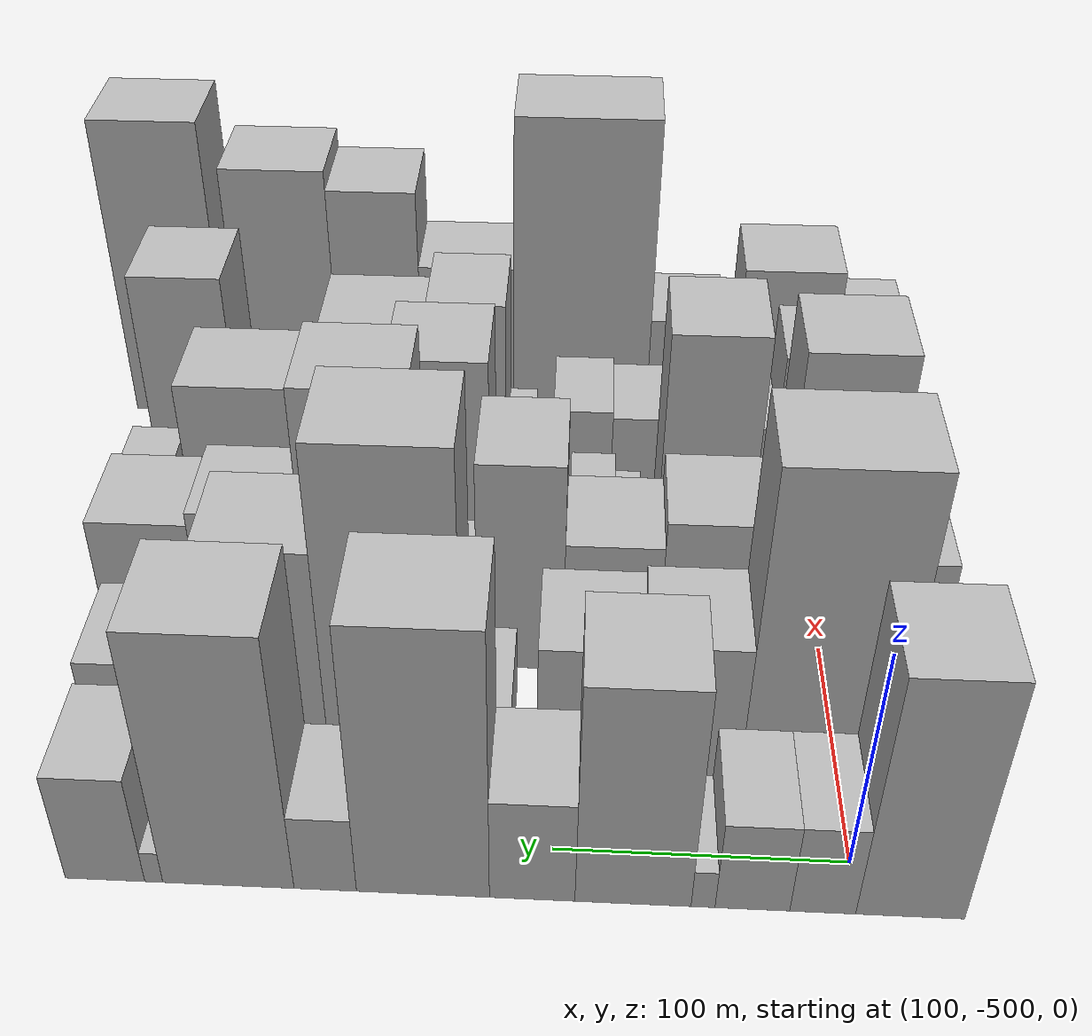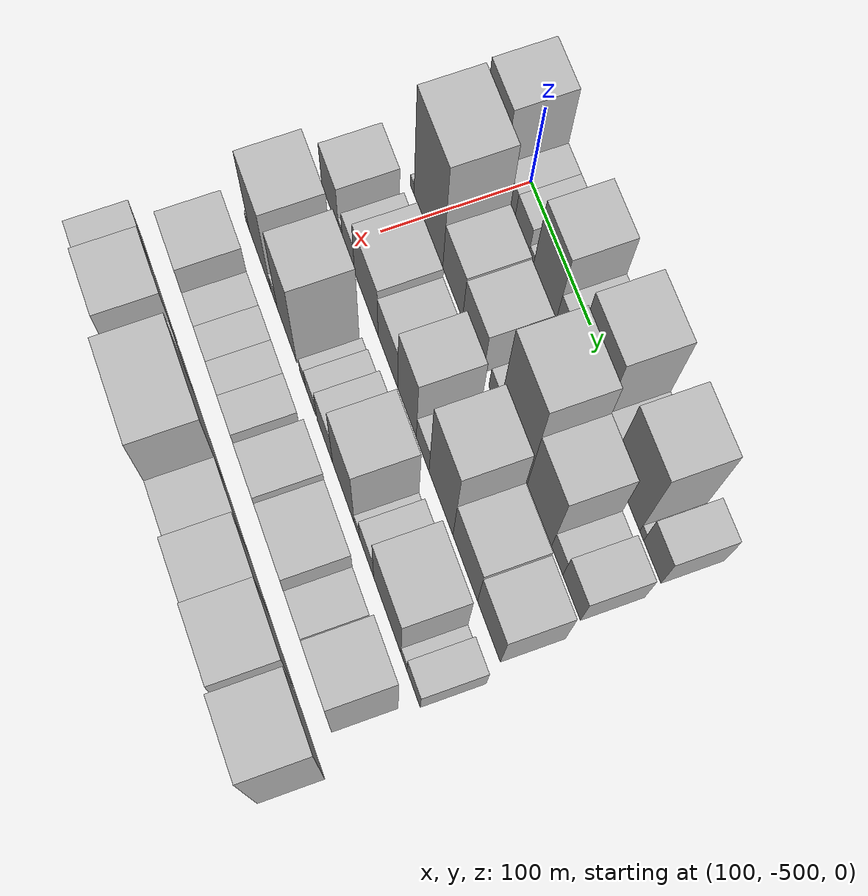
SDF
<sdf version="1.6">
 <world name="default">
  <model name="building_12">
   <static>1</static>
   <pose>100.0000 -517.1414 0 0.000000 0.000000 0.000000</pose>
   <link name="link">
    <pose>0 0 55.50 0 0 0</pose>
    <collision name="collision"><geometry><box><size>40.0000 35.2499 111.0000</size></box></geometry></collision>
    <visual name="visual">
     <cast_shadows>0</cast_shadows>
     <geometry><box><size>40.0000 35.2499 111.0000</size></box></geometry>
     <material>
      <script>
       <uri>model://HANNAS_wall/materials/scripts</uri>
       <uri>model://HANNAS_wall/materials/textures</uri>
       <name>vrc/HANNAS_wall</name>
      </script>
     </material>
    </visual>
   </link>
  </model>
  <model name="building_13">
   <static>1</static>
   <pose>100.0000 -488.8202 0 0.000000 0.000000 0.000000</pose>
   <link name="link">
    <pose>0 0 21.00 0 0 0</pose>
    <collision name="collision"><geometry><box><size>40.0000 21.3925 42.0000</size></box></geometry></collision>
    <visual name="visual">
     <cast_shadows>0</cast_shadows>
     <geometry><box><size>40.0000 21.3925 42.0000</size></box></geometry>
     <material>
      <script>
       <uri>model://HANNAS_wall/materials/scripts</uri>
       <uri>model://HANNAS_wall/materials/textures</uri>
       <name>vrc/HANNAS_wall</name>
      </script>
     </material>
    </visual>
   </link>
  </model>
  <model name="building_14">
   <static>1</static>
   <pose>100.0000 -465.9381 0 0.000000 0.000000 0.000000</pose>
   <link name="link">
    <pose>0 0 21.00 0 0 0</pose>
    <collision name="collision"><geometry><box><size>40.0000 24.3716 42.0000</size></box></geometry></collision>
    <visual name="visual">
     <cast_shadows>0</cast_shadows>
     <geometry><box><size>40.0000 24.3716 42.0000</size></box></geometry>
     <material>
      <script>
       <uri>model://HANNAS_wall/materials/scripts</uri>
       <uri>model://HANNAS_wall/materials/textures</uri>
       <name>vrc/HANNAS_wall</name>
      </script>
     </material>
    </visual>
   </link>
  </model>
  <model name="building_15">
   <static>1</static>
   <pose>100.0000 -449.8477 0 0.000000 0.000000 0.000000</pose>
   <link name="link">
    <pose>0 0 9.00 0 0 0</pose>
    <collision name="collision"><geometry><box><size>40.0000 7.8091 18.0000</size></box></geometry></collision>
    <visual name="visual">
     <cast_shadows>0</cast_shadows>
     <geometry><box><size>40.0000 7.8091 18.0000</size></box></geometry>
     <material>
      <script>
       <uri>model://HANNAS_wall/materials/scripts</uri>
       <uri>model://HANNAS_wall/materials/textures</uri>
       <name>vrc/HANNAS_wall</name>
      </script>
     </material>
    </visual>
   </link>
  </model>
  <model name="building_16">
   <static>1</static>
   <pose>100.0000 -426.8884 0 0.000000 0.000000 0.000000</pose>
   <link name="link">
    <pose>0 0 51.00 0 0 0</pose>
    <collision name="collision"><geometry><box><size>40.0000 38.1096 102.0000</size></box></geometry></collision>
    <visual name="visual">
     <cast_shadows>0</cast_shadows>
     <geometry><box><size>40.0000 38.1096 102.0000</size></box></geometry>
     <material>
      <script>
       <uri>model://HANNAS_wall/materials/scripts</uri>
       <uri>model://HANNAS_wall/materials/textures</uri>
       <name>vrc/HANNAS_wall</name>
      </script>
     </material>
    </visual>
   </link>
  </model>
  <model name="building_17">
   <static>1</static>
   <pose>100.0000 -393.7586 0 0.000000 0.000000 0.000000</pose>
   <link name="link">
    <pose>0 0 24.00 0 0 0</pose>
    <collision name="collision"><geometry><box><size>40.0000 28.1500 48.0000</size></box></geometry></collision>
    <visual name="visual">
     <cast_shadows>0</cast_shadows>
     <geometry><box><size>40.0000 28.1500 48.0000</size></box></geometry>
     <material>
      <script>
       <uri>model://HANNAS_wall/materials/scripts</uri>
       <uri>model://HANNAS_wall/materials/textures</uri>
       <name>vrc/HANNAS_wall</name>
      </script>
     </material>
    </visual>
   </link>
  </model>
  <model name="building_18">
   <static>1</static>
   <pose>100.0000 -357.6440 0 0.000000 0.000000 0.000000</pose>
   <link name="link">
    <pose>0 0 61.50 0 0 0</pose>
    <collision name="collision"><geometry><box><size>40.0000 44.0793 123.0000</size></box></geometry></collision>
    <visual name="visual">
     <cast_shadows>0</cast_shadows>
     <geometry><box><size>40.0000 44.0793 123.0000</size></box></geometry>
     <material>
      <script>
       <uri>model://HANNAS_wall/materials/scripts</uri>
       <uri>model://HANNAS_wall/materials/textures</uri>
       <name>vrc/HANNAS_wall</name>
      </script>
     </material>
    </visual>
   </link>
  </model>
  <model name="building_19">
   <static>1</static>
   <pose>100.0000 -325.1831 0 0.000000 0.000000 0.000000</pose>
   <link name="link">
    <pose>0 0 18.00 0 0 0</pose>
    <collision name="collision"><geometry><box><size>40.0000 20.8425 36.0000</size></box></geometry></collision>
    <visual name="visual">
     <cast_shadows>0</cast_shadows>
     <geometry><box><size>40.0000 20.8425 36.0000</size></box></geometry>
     <material>
      <script>
       <uri>model://HANNAS_wall/materials/scripts</uri>
       <uri>model://HANNAS_wall/materials/textures</uri>
       <name>vrc/HANNAS_wall</name>
      </script>
     </material>
    </visual>
   </link>
  </model>
  <model name="building_20">
   <static>1</static>
   <pose>100.0000 -292.7769 0 0.000000 0.000000 0.000000</pose>
   <link name="link">
    <pose>0 0 58.50 0 0 0</pose>
    <collision name="collision"><geometry><box><size>40.0000 43.9699 117.0000</size></box></geometry></collision>
    <visual name="visual">
     <cast_shadows>0</cast_shadows>
     <geometry><box><size>40.0000 43.9699 117.0000</size></box></geometry>
     <material>
      <script>
       <uri>model://HANNAS_wall/materials/scripts</uri>
       <uri>model://HANNAS_wall/materials/textures</uri>
       <name>vrc/HANNAS_wall</name>
      </script>
     </material>
    </visual>
   </link>
  </model>
  <model name="building_21">
   <static>1</static>
   <pose>100.0000 -267.7532 0 0.000000 0.000000 0.000000</pose>
   <link name="link">
    <pose>0 0 7.50 0 0 0</pose>
    <collision name="collision"><geometry><box><size>40.0000 6.0774 15.0000</size></box></geometry></collision>
    <visual name="visual">
     <cast_shadows>0</cast_shadows>
     <geometry><box><size>40.0000 6.0774 15.0000</size></box></geometry>
     <material>
      <script>
       <uri>model://HANNAS_wall/materials/scripts</uri>
       <uri>model://HANNAS_wall/materials/textures</uri>
       <name>vrc/HANNAS_wall</name>
      </script>
     </material>
    </visual>
   </link>
  </model>
  <model name="building_22">
   <static>1</static>
   <pose>100.0000 -251.3077 0 0.000000 0.000000 0.000000</pose>
   <link name="link">
    <pose>0 0 25.50 0 0 0</pose>
    <collision name="collision"><geometry><box><size>40.0000 26.8137 51.0000</size></box></geometry></collision>
    <visual name="visual">
     <cast_shadows>0</cast_shadows>
     <geometry><box><size>40.0000 26.8137 51.0000</size></box></geometry>
     <material>
      <script>
       <uri>model://HANNAS_wall/materials/scripts</uri>
       <uri>model://HANNAS_wall/materials/textures</uri>
       <name>vrc/HANNAS_wall</name>
      </script>
     </material>
    </visual>
   </link>
  </model>
  <model name="building_64">
   <static>1</static>
   <pose>152.0000 -520.0817 0 0.000000 0.000000 0.000000</pose>
   <link name="link">
    <pose>0 0 7.50 0 0 0</pose>
    <collision name="collision"><geometry><box><size>40.0000 6.9678 15.0000</size></box></geometry></collision>
    <visual name="visual">
     <cast_shadows>0</cast_shadows>
     <geometry><box><size>40.0000 6.9678 15.0000</size></box></geometry>
     <material>
      <script>
       <uri>model://HANNAS_wall/materials/scripts</uri>
       <uri>model://HANNAS_wall/materials/textures</uri>
       <name>vrc/HANNAS_wall</name>
      </script>
     </material>
    </visual>
   </link>
  </model>
  <model name="building_65">
   <static>1</static>
   <pose>152.0000 -490.6315 0 0.000000 0.000000 0.000000</pose>
   <link name="link">
    <pose>0 0 72.00 0 0 0</pose>
    <collision name="collision"><geometry><box><size>40.0000 51.9326 144.0000</size></box></geometry></collision>
    <visual name="visual">
     <cast_shadows>0</cast_shadows>
     <geometry><box><size>40.0000 51.9326 144.0000</size></box></geometry>
     <material>
      <script>
       <uri>model://HANNAS_wall/materials/scripts</uri>
       <uri>model://HANNAS_wall/materials/textures</uri>
       <name>vrc/HANNAS_wall</name>
      </script>
     </material>
    </visual>
   </link>
  </model>
  <model name="building_66">
   <static>1</static>
   <pose>152.0000 -447.1830 0 0.000000 0.000000 0.000000</pose>
   <link name="link">
    <pose>0 0 33.00 0 0 0</pose>
    <collision name="collision"><geometry><box><size>40.0000 34.9644 66.0000</size></box></geometry></collision>
    <visual name="visual">
     <cast_shadows>0</cast_shadows>
     <geometry><box><size>40.0000 34.9644 66.0000</size></box></geometry>
     <material>
      <script>
       <uri>model://HANNAS_wall/materials/scripts</uri>
       <uri>model://HANNAS_wall/materials/textures</uri>
       <name>vrc/HANNAS_wall</name>
      </script>
     </material>
    </visual>
   </link>
  </model>
  <model name="building_67">
   <static>1</static>
   <pose>152.0000 -411.3741 0 0.000000 0.000000 0.000000</pose>
   <link name="link">
    <pose>0 0 31.50 0 0 0</pose>
    <collision name="collision"><geometry><box><size>40.0000 36.6535 63.0000</size></box></geometry></collision>
    <visual name="visual">
     <cast_shadows>0</cast_shadows>
     <geometry><box><size>40.0000 36.6535 63.0000</size></box></geometry>
     <material>
      <script>
       <uri>model://HANNAS_wall/materials/scripts</uri>
       <uri>model://HANNAS_wall/materials/textures</uri>
       <name>vrc/HANNAS_wall</name>
      </script>
     </material>
    </visual>
   </link>
  </model>
  <model name="building_68">
   <static>1</static>
   <pose>152.0000 -375.5326 0 0.000000 0.000000 0.000000</pose>
   <link name="link">
    <pose>0 0 16.50 0 0 0</pose>
    <collision name="collision"><geometry><box><size>40.0000 17.0295 33.0000</size></box></geometry></collision>
    <visual name="visual">
     <cast_shadows>0</cast_shadows>
     <geometry><box><size>40.0000 17.0295 33.0000</size></box></geometry>
     <material>
      <script>
       <uri>model://HANNAS_wall/materials/scripts</uri>
       <uri>model://HANNAS_wall/materials/textures</uri>
       <name>vrc/HANNAS_wall</name>
      </script>
     </material>
    </visual>
   </link>
  </model>
  <model name="building_69">
   <static>1</static>
   <pose>152.0000 -343.1738 0 0.000000 0.000000 0.000000</pose>
   <link name="link">
    <pose>0 0 73.50 0 0 0</pose>
    <collision name="collision"><geometry><box><size>40.0000 47.6880 147.0000</size></box></geometry></collision>
    <visual name="visual">
     <cast_shadows>0</cast_shadows>
     <geometry><box><size>40.0000 47.6880 147.0000</size></box></geometry>
     <material>
      <script>
       <uri>model://HANNAS_wall/materials/scripts</uri>
       <uri>model://HANNAS_wall/materials/textures</uri>
       <name>vrc/HANNAS_wall</name>
      </script>
     </material>
    </visual>
   </link>
  </model>
  <model name="building_70">
   <static>1</static>
   <pose>152.0000 -299.5063 0 0.000000 0.000000 0.000000</pose>
   <link name="link">
    <pose>0 0 51.00 0 0 0</pose>
    <collision name="collision"><geometry><box><size>40.0000 39.6471 102.0000</size></box></geometry></collision>
    <visual name="visual">
     <cast_shadows>0</cast_shadows>
     <geometry><box><size>40.0000 39.6471 102.0000</size></box></geometry>
     <material>
      <script>
       <uri>model://HANNAS_wall/materials/scripts</uri>
       <uri>model://HANNAS_wall/materials/textures</uri>
       <name>vrc/HANNAS_wall</name>
      </script>
     </material>
    </visual>
   </link>
  </model>
  <model name="building_71">
   <static>1</static>
   <pose>152.0000 -270.5392 0 0.000000 0.000000 0.000000</pose>
   <link name="link">
    <pose>0 0 16.50 0 0 0</pose>
    <collision name="collision"><geometry><box><size>40.0000 18.2869 33.0000</size></box></geometry></collision>
    <visual name="visual">
     <cast_shadows>0</cast_shadows>
     <geometry><box><size>40.0000 18.2869 33.0000</size></box></geometry>
     <material>
      <script>
       <uri>model://HANNAS_wall/materials/scripts</uri>
       <uri>model://HANNAS_wall/materials/textures</uri>
       <name>vrc/HANNAS_wall</name>
      </script>
     </material>
    </visual>
   </link>
  </model>
  <model name="building_72">
   <static>1</static>
   <pose>152.0000 -247.4045 0 0.000000 0.000000 0.000000</pose>
   <link name="link">
    <pose>0 0 24.00 0 0 0</pose>
    <collision name="collision"><geometry><box><size>40.0000 27.9825 48.0000</size></box></geometry></collision>
    <visual name="visual">
     <cast_shadows>0</cast_shadows>
     <geometry><box><size>40.0000 27.9825 48.0000</size></box></geometry>
     <material>
      <script>
       <uri>model://HANNAS_wall/materials/scripts</uri>
       <uri>model://HANNAS_wall/materials/textures</uri>
       <name>vrc/HANNAS_wall</name>
      </script>
     </material>
    </visual>
   </link>
  </model>
  <model name="building_116">
   <static>1</static>
   <pose>204.0000 -525.6749 0 0.000000 0.000000 0.000000</pose>
   <link name="link">
    <pose>0 0 30.00 0 0 0</pose>
    <collision name="collision"><geometry><box><size>40.0000 31.6657 60.0000</size></box></geometry></collision>
    <visual name="visual">
     <cast_shadows>0</cast_shadows>
     <geometry><box><size>40.0000 31.6657 60.0000</size></box></geometry>
     <material>
      <script>
       <uri>model://HANNAS_wall/materials/scripts</uri>
       <uri>model://HANNAS_wall/materials/textures</uri>
       <name>vrc/HANNAS_wall</name>
      </script>
     </material>
    </visual>
   </link>
  </model>
  <model name="building_117">
   <static>1</static>
   <pose>204.0000 -506.1091 0 0.000000 0.000000 0.000000</pose>
   <link name="link">
    <pose>0 0 9.00 0 0 0</pose>
    <collision name="collision"><geometry><box><size>40.0000 7.4657 18.0000</size></box></geometry></collision>
    <visual name="visual">
     <cast_shadows>0</cast_shadows>
     <geometry><box><size>40.0000 7.4657 18.0000</size></box></geometry>
     <material>
      <script>
       <uri>model://HANNAS_wall/materials/scripts</uri>
       <uri>model://HANNAS_wall/materials/textures</uri>
       <name>vrc/HANNAS_wall</name>
      </script>
     </material>
    </visual>
   </link>
  </model>
  <model name="building_118">
   <static>1</static>
   <pose>204.0000 -491.2236 0 0.000000 0.000000 0.000000</pose>
   <link name="link">
    <pose>0 0 21.00 0 0 0</pose>
    <collision name="collision"><geometry><box><size>40.0000 22.3054 42.0000</size></box></geometry></collision>
    <visual name="visual">
     <cast_shadows>0</cast_shadows>
     <geometry><box><size>40.0000 22.3054 42.0000</size></box></geometry>
     <material>
      <script>
       <uri>model://HANNAS_wall/materials/scripts</uri>
       <uri>model://HANNAS_wall/materials/textures</uri>
       <name>vrc/HANNAS_wall</name>
      </script>
     </material>
    </visual>
   </link>
  </model>
  <model name="building_119">
   <static>1</static>
   <pose>204.0000 -458.3311 0 0.000000 0.000000 0.000000</pose>
   <link name="link">
    <pose>0 0 37.50 0 0 0</pose>
    <collision name="collision"><geometry><box><size>40.0000 43.4796 75.0000</size></box></geometry></collision>
    <visual name="visual">
     <cast_shadows>0</cast_shadows>
     <geometry><box><size>40.0000 43.4796 75.0000</size></box></geometry>
     <material>
      <script>
       <uri>model://HANNAS_wall/materials/scripts</uri>
       <uri>model://HANNAS_wall/materials/textures</uri>
       <name>vrc/HANNAS_wall</name>
      </script>
     </material>
    </visual>
   </link>
  </model>
  <model name="building_120">
   <static>1</static>
   <pose>204.0000 -418.6936 0 0.000000 0.000000 0.000000</pose>
   <link name="link">
    <pose>0 0 31.50 0 0 0</pose>
    <collision name="collision"><geometry><box><size>40.0000 35.7954 63.0000</size></box></geometry></collision>
    <visual name="visual">
     <cast_shadows>0</cast_shadows>
     <geometry><box><size>40.0000 35.7954 63.0000</size></box></geometry>
     <material>
      <script>
       <uri>model://HANNAS_wall/materials/scripts</uri>
       <uri>model://HANNAS_wall/materials/textures</uri>
       <name>vrc/HANNAS_wall</name>
      </script>
     </material>
    </visual>
   </link>
  </model>
  <model name="building_121">
   <static>1</static>
   <pose>204.0000 -384.6006 0 0.000000 0.000000 0.000000</pose>
   <link name="link">
    <pose>0 0 49.50 0 0 0</pose>
    <collision name="collision"><geometry><box><size>40.0000 32.3905 99.0000</size></box></geometry></collision>
    <visual name="visual">
     <cast_shadows>0</cast_shadows>
     <geometry><box><size>40.0000 32.3905 99.0000</size></box></geometry>
     <material>
      <script>
       <uri>model://HANNAS_wall/materials/scripts</uri>
       <uri>model://HANNAS_wall/materials/textures</uri>
       <name>vrc/HANNAS_wall</name>
      </script>
     </material>
    </visual>
   </link>
  </model>
  <model name="building_122">
   <static>1</static>
   <pose>204.0000 -357.3064 0 0.000000 0.000000 0.000000</pose>
   <link name="link">
    <pose>0 0 19.50 0 0 0</pose>
    <collision name="collision"><geometry><box><size>40.0000 22.1980 39.0000</size></box></geometry></collision>
    <visual name="visual">
     <cast_shadows>0</cast_shadows>
     <geometry><box><size>40.0000 22.1980 39.0000</size></box></geometry>
     <material>
      <script>
       <uri>model://HANNAS_wall/materials/scripts</uri>
       <uri>model://HANNAS_wall/materials/textures</uri>
       <name>vrc/HANNAS_wall</name>
      </script>
     </material>
    </visual>
   </link>
  </model>
  <model name="building_123">
   <static>1</static>
   <pose>204.0000 -325.7115 0 0.000000 0.000000 0.000000</pose>
   <link name="link">
    <pose>0 0 64.50 0 0 0</pose>
    <collision name="collision"><geometry><box><size>40.0000 40.9918 129.0000</size></box></geometry></collision>
    <visual name="visual">
     <cast_shadows>0</cast_shadows>
     <geometry><box><size>40.0000 40.9918 129.0000</size></box></geometry>
     <material>
      <script>
       <uri>model://HANNAS_wall/materials/scripts</uri>
       <uri>model://HANNAS_wall/materials/textures</uri>
       <name>vrc/HANNAS_wall</name>
      </script>
     </material>
    </visual>
   </link>
  </model>
  <model name="building_124">
   <static>1</static>
   <pose>204.0000 -284.5698 0 0.000000 0.000000 0.000000</pose>
   <link name="link">
    <pose>0 0 36.00 0 0 0</pose>
    <collision name="collision"><geometry><box><size>40.0000 41.2916 72.0000</size></box></geometry></collision>
    <visual name="visual">
     <cast_shadows>0</cast_shadows>
     <geometry><box><size>40.0000 41.2916 72.0000</size></box></geometry>
     <material>
      <script>
       <uri>model://HANNAS_wall/materials/scripts</uri>
       <uri>model://HANNAS_wall/materials/textures</uri>
       <name>vrc/HANNAS_wall</name>
      </script>
     </material>
    </visual>
   </link>
  </model>
  <model name="building_125">
   <static>1</static>
   <pose>204.0000 -245.1957 0 0.000000 0.000000 0.000000</pose>
   <link name="link">
    <pose>0 0 33.00 0 0 0</pose>
    <collision name="collision"><geometry><box><size>40.0000 37.4565 66.0000</size></box></geometry></collision>
    <visual name="visual">
     <cast_shadows>0</cast_shadows>
     <geometry><box><size>40.0000 37.4565 66.0000</size></box></geometry>
     <material>
      <script>
       <uri>model://HANNAS_wall/materials/scripts</uri>
       <uri>model://HANNAS_wall/materials/textures</uri>
       <name>vrc/HANNAS_wall</name>
      </script>
     </material>
    </visual>
   </link>
  </model>
  <model name="building_167">
   <static>1</static>
   <pose>256.0000 -531.2475 0 0.000000 0.000000 0.000000</pose>
   <link name="link">
    <pose>0 0 7.50 0 0 0</pose>
    <collision name="collision"><geometry><box><size>40.0000 7.4469 15.0000</size></box></geometry></collision>
    <visual name="visual">
     <cast_shadows>0</cast_shadows>
     <geometry><box><size>40.0000 7.4469 15.0000</size></box></geometry>
     <material>
      <script>
       <uri>model://HANNAS_wall/materials/scripts</uri>
       <uri>model://HANNAS_wall/materials/textures</uri>
       <name>vrc/HANNAS_wall</name>
      </script>
     </material>
    </visual>
   </link>
  </model>
  <model name="building_168">
   <static>1</static>
   <pose>256.0000 -506.8439 0 0.000000 0.000000 0.000000</pose>
   <link name="link">
    <pose>0 0 57.00 0 0 0</pose>
    <collision name="collision"><geometry><box><size>40.0000 41.3603 114.0000</size></box></geometry></collision>
    <visual name="visual">
     <cast_shadows>0</cast_shadows>
     <geometry><box><size>40.0000 41.3603 114.0000</size></box></geometry>
     <material>
      <script>
       <uri>model://HANNAS_wall/materials/scripts</uri>
       <uri>model://HANNAS_wall/materials/textures</uri>
       <name>vrc/HANNAS_wall</name>
      </script>
     </material>
    </visual>
   </link>
  </model>
  <model name="building_169">
   <static>1</static>
   <pose>256.0000 -479.8299 0 0.000000 0.000000 0.000000</pose>
   <link name="link">
    <pose>0 0 13.50 0 0 0</pose>
    <collision name="collision"><geometry><box><size>40.0000 12.6677 27.0000</size></box></geometry></collision>
    <visual name="visual">
     <cast_shadows>0</cast_shadows>
     <geometry><box><size>40.0000 12.6677 27.0000</size></box></geometry>
     <material>
      <script>
       <uri>model://HANNAS_wall/materials/scripts</uri>
       <uri>model://HANNAS_wall/materials/textures</uri>
       <name>vrc/HANNAS_wall</name>
      </script>
     </material>
    </visual>
   </link>
  </model>
  <model name="building_170">
   <static>1</static>
   <pose>256.0000 -455.0095 0 0.000000 0.000000 0.000000</pose>
   <link name="link">
    <pose>0 0 60.00 0 0 0</pose>
    <collision name="collision"><geometry><box><size>40.0000 36.9730 120.0000</size></box></geometry></collision>
    <visual name="visual">
     <cast_shadows>0</cast_shadows>
     <geometry><box><size>40.0000 36.9730 120.0000</size></box></geometry>
     <material>
      <script>
       <uri>model://HANNAS_wall/materials/scripts</uri>
       <uri>model://HANNAS_wall/materials/textures</uri>
       <name>vrc/HANNAS_wall</name>
      </script>
     </material>
    </visual>
   </link>
  </model>
  <model name="building_171">
   <static>1</static>
   <pose>256.0000 -425.2099 0 0.000000 0.000000 0.000000</pose>
   <link name="link">
    <pose>0 0 12.00 0 0 0</pose>
    <collision name="collision"><geometry><box><size>40.0000 10.6262 24.0000</size></box></geometry></collision>
    <visual name="visual">
     <cast_shadows>0</cast_shadows>
     <geometry><box><size>40.0000 10.6262 24.0000</size></box></geometry>
     <material>
      <script>
       <uri>model://HANNAS_wall/materials/scripts</uri>
       <uri>model://HANNAS_wall/materials/textures</uri>
       <name>vrc/HANNAS_wall</name>
      </script>
     </material>
    </visual>
   </link>
  </model>
  <model name="building_172">
   <static>1</static>
   <pose>256.0000 -410.7079 0 0.000000 0.000000 0.000000</pose>
   <link name="link">
    <pose>0 0 16.50 0 0 0</pose>
    <collision name="collision"><geometry><box><size>40.0000 18.3778 33.0000</size></box></geometry></collision>
    <visual name="visual">
     <cast_shadows>0</cast_shadows>
     <geometry><box><size>40.0000 18.3778 33.0000</size></box></geometry>
     <material>
      <script>
       <uri>model://HANNAS_wall/materials/scripts</uri>
       <uri>model://HANNAS_wall/materials/textures</uri>
       <name>vrc/HANNAS_wall</name>
      </script>
     </material>
    </visual>
   </link>
  </model>
  <model name="building_173">
   <static>1</static>
   <pose>256.0000 -384.2431 0 0.000000 0.000000 0.000000</pose>
   <link name="link">
    <pose>0 0 27.00 0 0 0</pose>
    <collision name="collision"><geometry><box><size>40.0000 28.5518 54.0000</size></box></geometry></collision>
    <visual name="visual">
     <cast_shadows>0</cast_shadows>
     <geometry><box><size>40.0000 28.5518 54.0000</size></box></geometry>
     <material>
      <script>
       <uri>model://HANNAS_wall/materials/scripts</uri>
       <uri>model://HANNAS_wall/materials/textures</uri>
       <name>vrc/HANNAS_wall</name>
      </script>
     </material>
    </visual>
   </link>
  </model>
  <model name="building_174">
   <static>1</static>
   <pose>256.0000 -350.6365 0 0.000000 0.000000 0.000000</pose>
   <link name="link">
    <pose>0 0 52.50 0 0 0</pose>
    <collision name="collision"><geometry><box><size>40.0000 38.6613 105.0000</size></box></geometry></collision>
    <visual name="visual">
     <cast_shadows>0</cast_shadows>
     <geometry><box><size>40.0000 38.6613 105.0000</size></box></geometry>
     <material>
      <script>
       <uri>model://HANNAS_wall/materials/scripts</uri>
       <uri>model://HANNAS_wall/materials/textures</uri>
       <name>vrc/HANNAS_wall</name>
      </script>
     </material>
    </visual>
   </link>
  </model>
  <model name="building_175">
   <static>1</static>
   <pose>256.0000 -326.7210 0 0.000000 0.000000 0.000000</pose>
   <link name="link">
    <pose>0 0 10.50 0 0 0</pose>
    <collision name="collision"><geometry><box><size>40.0000 9.1697 21.0000</size></box></geometry></collision>
    <visual name="visual">
     <cast_shadows>0</cast_shadows>
     <geometry><box><size>40.0000 9.1697 21.0000</size></box></geometry>
     <material>
      <script>
       <uri>model://HANNAS_wall/materials/scripts</uri>
       <uri>model://HANNAS_wall/materials/textures</uri>
       <name>vrc/HANNAS_wall</name>
      </script>
     </material>
    </visual>
   </link>
  </model>
  <model name="building_176">
   <static>1</static>
   <pose>256.0000 -309.6803 0 0.000000 0.000000 0.000000</pose>
   <link name="link">
    <pose>0 0 21.00 0 0 0</pose>
    <collision name="collision"><geometry><box><size>40.0000 24.9116 42.0000</size></box></geometry></collision>
    <visual name="visual">
     <cast_shadows>0</cast_shadows>
     <geometry><box><size>40.0000 24.9116 42.0000</size></box></geometry>
     <material>
      <script>
       <uri>model://HANNAS_wall/materials/scripts</uri>
       <uri>model://HANNAS_wall/materials/textures</uri>
       <name>vrc/HANNAS_wall</name>
      </script>
     </material>
    </visual>
   </link>
  </model>
  <model name="building_177">
   <static>1</static>
   <pose>256.0000 -273.6171 0 0.000000 0.000000 0.000000</pose>
   <link name="link">
    <pose>0 0 45.00 0 0 0</pose>
    <collision name="collision"><geometry><box><size>40.0000 47.2148 90.0000</size></box></geometry></collision>
    <visual name="visual">
     <cast_shadows>0</cast_shadows>
     <geometry><box><size>40.0000 47.2148 90.0000</size></box></geometry>
     <material>
      <script>
       <uri>model://HANNAS_wall/materials/scripts</uri>
       <uri>model://HANNAS_wall/materials/textures</uri>
       <name>vrc/HANNAS_wall</name>
      </script>
     </material>
    </visual>
   </link>
  </model>
  <model name="building_178">
   <static>1</static>
   <pose>256.0000 -244.9540 0 0.000000 0.000000 0.000000</pose>
   <link name="link">
    <pose>0 0 10.50 0 0 0</pose>
    <collision name="collision"><geometry><box><size>40.0000 10.1114 21.0000</size></box></geometry></collision>
    <visual name="visual">
     <cast_shadows>0</cast_shadows>
     <geometry><box><size>40.0000 10.1114 21.0000</size></box></geometry>
     <material>
      <script>
       <uri>model://HANNAS_wall/materials/scripts</uri>
       <uri>model://HANNAS_wall/materials/textures</uri>
       <name>vrc/HANNAS_wall</name>
      </script>
     </material>
    </visual>
   </link>
  </model>
  <model name="building_179">
   <static>1</static>
   <pose>256.0000 -228.7755 0 0.000000 0.000000 0.000000</pose>
   <link name="link">
    <pose>0 0 19.50 0 0 0</pose>
    <collision name="collision"><geometry><box><size>40.0000 22.2456 39.0000</size></box></geometry></collision>
    <visual name="visual">
     <cast_shadows>0</cast_shadows>
     <geometry><box><size>40.0000 22.2456 39.0000</size></box></geometry>
     <material>
      <script>
       <uri>model://HANNAS_wall/materials/scripts</uri>
       <uri>model://HANNAS_wall/materials/textures</uri>
       <name>vrc/HANNAS_wall</name>
      </script>
     </material>
    </visual>
   </link>
  </model>
  <model name="building_217">
   <static>1</static>
   <pose>308.0000 -506.3118 0 0.000000 0.000000 0.000000</pose>
   <link name="link">
    <pose>0 0 37.50 0 0 0</pose>
    <collision name="collision"><geometry><box><size>40.0000 38.1646 75.0000</size></box></geometry></collision>
    <visual name="visual">
     <cast_shadows>0</cast_shadows>
     <geometry><box><size>40.0000 38.1646 75.0000</size></box></geometry>
     <material>
      <script>
       <uri>model://HANNAS_wall/materials/scripts</uri>
       <uri>model://HANNAS_wall/materials/textures</uri>
       <name>vrc/HANNAS_wall</name>
      </script>
     </material>
    </visual>
   </link>
  </model>
  <model name="building_218">
   <static>1</static>
   <pose>308.0000 -475.5544 0 0.000000 0.000000 0.000000</pose>
   <link name="link">
    <pose>0 0 19.50 0 0 0</pose>
    <collision name="collision"><geometry><box><size>40.0000 23.3501 39.0000</size></box></geometry></collision>
    <visual name="visual">
     <cast_shadows>0</cast_shadows>
     <geometry><box><size>40.0000 23.3501 39.0000</size></box></geometry>
     <material>
      <script>
       <uri>model://HANNAS_wall/materials/scripts</uri>
       <uri>model://HANNAS_wall/materials/textures</uri>
       <name>vrc/HANNAS_wall</name>
      </script>
     </material>
    </visual>
   </link>
  </model>
  <model name="building_219">
   <static>1</static>
   <pose>308.0000 -452.5262 0 0.000000 0.000000 0.000000</pose>
   <link name="link">
    <pose>0 0 21.00 0 0 0</pose>
    <collision name="collision"><geometry><box><size>40.0000 22.7061 42.0000</size></box></geometry></collision>
    <visual name="visual">
     <cast_shadows>0</cast_shadows>
     <geometry><box><size>40.0000 22.7061 42.0000</size></box></geometry>
     <material>
      <script>
       <uri>model://HANNAS_wall/materials/scripts</uri>
       <uri>model://HANNAS_wall/materials/textures</uri>
       <name>vrc/HANNAS_wall</name>
      </script>
     </material>
    </visual>
   </link>
  </model>
  <model name="building_220">
   <static>1</static>
   <pose>308.0000 -429.8266 0 0.000000 0.000000 0.000000</pose>
   <link name="link">
    <pose>0 0 21.00 0 0 0</pose>
    <collision name="collision"><geometry><box><size>40.0000 22.6931 42.0000</size></box></geometry></collision>
    <visual name="visual">
     <cast_shadows>0</cast_shadows>
     <geometry><box><size>40.0000 22.6931 42.0000</size></box></geometry>
     <material>
      <script>
       <uri>model://HANNAS_wall/materials/scripts</uri>
       <uri>model://HANNAS_wall/materials/textures</uri>
       <name>vrc/HANNAS_wall</name>
      </script>
     </material>
    </visual>
   </link>
  </model>
  <model name="building_221">
   <static>1</static>
   <pose>308.0000 -405.9413 0 0.000000 0.000000 0.000000</pose>
   <link name="link">
    <pose>0 0 22.50 0 0 0</pose>
    <collision name="collision"><geometry><box><size>40.0000 25.0775 45.0000</size></box></geometry></collision>
    <visual name="visual">
     <cast_shadows>0</cast_shadows>
     <geometry><box><size>40.0000 25.0775 45.0000</size></box></geometry>
     <material>
      <script>
       <uri>model://HANNAS_wall/materials/scripts</uri>
       <uri>model://HANNAS_wall/materials/textures</uri>
       <name>vrc/HANNAS_wall</name>
      </script>
     </material>
    </visual>
   </link>
  </model>
  <model name="building_222">
   <static>1</static>
   <pose>308.0000 -379.3942 0 0.000000 0.000000 0.000000</pose>
   <link name="link">
    <pose>0 0 13.50 0 0 0</pose>
    <collision name="collision"><geometry><box><size>40.0000 12.0168 27.0000</size></box></geometry></collision>
    <visual name="visual">
     <cast_shadows>0</cast_shadows>
     <geometry><box><size>40.0000 12.0168 27.0000</size></box></geometry>
     <material>
      <script>
       <uri>model://HANNAS_wall/materials/scripts</uri>
       <uri>model://HANNAS_wall/materials/textures</uri>
       <name>vrc/HANNAS_wall</name>
      </script>
     </material>
    </visual>
   </link>
  </model>
  <model name="building_223">
   <static>1</static>
   <pose>308.0000 -357.3059 0 0.000000 0.000000 0.000000</pose>
   <link name="link">
    <pose>0 0 48.00 0 0 0</pose>
    <collision name="collision"><geometry><box><size>40.0000 32.1597 96.0000</size></box></geometry></collision>
    <visual name="visual">
     <cast_shadows>0</cast_shadows>
     <geometry><box><size>40.0000 32.1597 96.0000</size></box></geometry>
     <material>
      <script>
       <uri>model://HANNAS_wall/materials/scripts</uri>
       <uri>model://HANNAS_wall/materials/textures</uri>
       <name>vrc/HANNAS_wall</name>
      </script>
     </material>
    </visual>
   </link>
  </model>
  <model name="building_224">
   <static>1</static>
   <pose>308.0000 -318.9824 0 0.000000 0.000000 0.000000</pose>
   <link name="link">
    <pose>0 0 42.00 0 0 0</pose>
    <collision name="collision"><geometry><box><size>40.0000 44.4874 84.0000</size></box></geometry></collision>
    <visual name="visual">
     <cast_shadows>0</cast_shadows>
     <geometry><box><size>40.0000 44.4874 84.0000</size></box></geometry>
     <material>
      <script>
       <uri>model://HANNAS_wall/materials/scripts</uri>
       <uri>model://HANNAS_wall/materials/textures</uri>
       <name>vrc/HANNAS_wall</name>
      </script>
     </material>
    </visual>
   </link>
  </model>
  <model name="building_225">
   <static>1</static>
   <pose>308.0000 -282.5896 0 0.000000 0.000000 0.000000</pose>
   <link name="link">
    <pose>0 0 27.00 0 0 0</pose>
    <collision name="collision"><geometry><box><size>40.0000 28.2982 54.0000</size></box></geometry></collision>
    <visual name="visual">
     <cast_shadows>0</cast_shadows>
     <geometry><box><size>40.0000 28.2982 54.0000</size></box></geometry>
     <material>
      <script>
       <uri>model://HANNAS_wall/materials/scripts</uri>
       <uri>model://HANNAS_wall/materials/textures</uri>
       <name>vrc/HANNAS_wall</name>
      </script>
     </material>
    </visual>
   </link>
  </model>
  <model name="building_226">
   <static>1</static>
   <pose>308.0000 -240.3958 0 0.000000 0.000000 0.000000</pose>
   <link name="link">
    <pose>0 0 52.50 0 0 0</pose>
    <collision name="collision"><geometry><box><size>40.0000 38.0893 105.0000</size></box></geometry></collision>
    <visual name="visual">
     <cast_shadows>0</cast_shadows>
     <geometry><box><size>40.0000 38.0893 105.0000</size></box></geometry>
     <material>
      <script>
       <uri>model://HANNAS_wall/materials/scripts</uri>
       <uri>model://HANNAS_wall/materials/textures</uri>
       <name>vrc/HANNAS_wall</name>
      </script>
     </material>
    </visual>
   </link>
  </model>
  <model name="building_271">
   <static>1</static>
   <pose>360.0000 -531.1188 0 0.000000 0.000000 0.000000</pose>
   <link name="link">
    <pose>0 0 28.50 0 0 0</pose>
    <collision name="collision"><geometry><box><size>40.0000 29.7410 57.0000</size></box></geometry></collision>
    <visual name="visual">
     <cast_shadows>0</cast_shadows>
     <geometry><box><size>40.0000 29.7410 57.0000</size></box></geometry>
     <material>
      <script>
       <uri>model://HANNAS_wall/materials/scripts</uri>
       <uri>model://HANNAS_wall/materials/textures</uri>
       <name>vrc/HANNAS_wall</name>
      </script>
     </material>
    </visual>
   </link>
  </model>
  <model name="building_272">
   <static>1</static>
   <pose>360.0000 -494.7860 0 0.000000 0.000000 0.000000</pose>
   <link name="link">
    <pose>0 0 42.00 0 0 0</pose>
    <collision name="collision"><geometry><box><size>40.0000 42.9247 84.0000</size></box></geometry></collision>
    <visual name="visual">
     <cast_shadows>0</cast_shadows>
     <geometry><box><size>40.0000 42.9247 84.0000</size></box></geometry>
     <material>
      <script>
       <uri>model://HANNAS_wall/materials/scripts</uri>
       <uri>model://HANNAS_wall/materials/textures</uri>
       <name>vrc/HANNAS_wall</name>
      </script>
     </material>
    </visual>
   </link>
  </model>
  <model name="building_273">
   <static>1</static>
   <pose>360.0000 -450.3999 0 0.000000 0.000000 0.000000</pose>
   <link name="link">
    <pose>0 0 28.50 0 0 0</pose>
    <collision name="collision"><geometry><box><size>40.0000 31.8474 57.0000</size></box></geometry></collision>
    <visual name="visual">
     <cast_shadows>0</cast_shadows>
     <geometry><box><size>40.0000 31.8474 57.0000</size></box></geometry>
     <material>
      <script>
       <uri>model://HANNAS_wall/materials/scripts</uri>
       <uri>model://HANNAS_wall/materials/textures</uri>
       <name>vrc/HANNAS_wall</name>
      </script>
     </material>
    </visual>
   </link>
  </model>
  <model name="building_274">
   <static>1</static>
   <pose>360.0000 -404.2435 0 0.000000 0.000000 0.000000</pose>
   <link name="link">
    <pose>0 0 76.50 0 0 0</pose>
    <collision name="collision"><geometry><box><size>40.0000 60.4655 153.0000</size></box></geometry></collision>
    <visual name="visual">
     <cast_shadows>0</cast_shadows>
     <geometry><box><size>40.0000 60.4655 153.0000</size></box></geometry>
     <material>
      <script>
       <uri>model://HANNAS_wall/materials/scripts</uri>
       <uri>model://HANNAS_wall/materials/textures</uri>
       <name>vrc/HANNAS_wall</name>
      </script>
     </material>
    </visual>
   </link>
  </model>
  <model name="building_275">
   <static>1</static>
   <pose>360.0000 -353.3179 0 0.000000 0.000000 0.000000</pose>
   <link name="link">
    <pose>0 0 40.50 0 0 0</pose>
    <collision name="collision"><geometry><box><size>40.0000 41.3857 81.0000</size></box></geometry></collision>
    <visual name="visual">
     <cast_shadows>0</cast_shadows>
     <geometry><box><size>40.0000 41.3857 81.0000</size></box></geometry>
     <material>
      <script>
       <uri>model://HANNAS_wall/materials/scripts</uri>
       <uri>model://HANNAS_wall/materials/textures</uri>
       <name>vrc/HANNAS_wall</name>
      </script>
     </material>
    </visual>
   </link>
  </model>
  <model name="building_276">
   <static>1</static>
   <pose>360.0000 -313.6477 0 0.000000 0.000000 0.000000</pose>
   <link name="link">
    <pose>0 0 58.50 0 0 0</pose>
    <collision name="collision"><geometry><box><size>40.0000 37.9547 117.0000</size></box></geometry></collision>
    <visual name="visual">
     <cast_shadows>0</cast_shadows>
     <geometry><box><size>40.0000 37.9547 117.0000</size></box></geometry>
     <material>
      <script>
       <uri>model://HANNAS_wall/materials/scripts</uri>
       <uri>model://HANNAS_wall/materials/textures</uri>
       <name>vrc/HANNAS_wall</name>
      </script>
     </material>
    </visual>
   </link>
  </model>
  <model name="building_277">
   <static>1</static>
   <pose>360.0000 -272.3931 0 0.000000 0.000000 0.000000</pose>
   <link name="link">
    <pose>0 0 63.00 0 0 0</pose>
    <collision name="collision"><geometry><box><size>40.0000 44.5544 126.0000</size></box></geometry></collision>
    <visual name="visual">
     <cast_shadows>0</cast_shadows>
     <geometry><box><size>40.0000 44.5544 126.0000</size></box></geometry>
     <material>
      <script>
       <uri>model://HANNAS_wall/materials/scripts</uri>
       <uri>model://HANNAS_wall/materials/textures</uri>
       <name>vrc/HANNAS_wall</name>
      </script>
     </material>
    </visual>
   </link>
  </model>
  <model name="building_278">
   <static>1</static>
   <pose>360.0000 -246.8901 0 0.000000 0.000000 0.000000</pose>
   <link name="link">
    <pose>0 0 7.50 0 0 0</pose>
    <collision name="collision"><geometry><box><size>40.0000 6.4517 15.0000</size></box></geometry></collision>
    <visual name="visual">
     <cast_shadows>0</cast_shadows>
     <geometry><box><size>40.0000 6.4517 15.0000</size></box></geometry>
     <material>
      <script>
       <uri>model://HANNAS_wall/materials/scripts</uri>
       <uri>model://HANNAS_wall/materials/textures</uri>
       <name>vrc/HANNAS_wall</name>
      </script>
     </material>
    </visual>
   </link>
  </model>
  <model name="building_279">
   <static>1</static>
   <pose>360.0000 -220.8708 0 0.000000 0.000000 0.000000</pose>
   <link name="link">
    <pose>0 0 73.50 0 0 0</pose>
    <collision name="collision"><geometry><box><size>40.0000 45.5870 147.0000</size></box></geometry></collision>
    <visual name="visual">
     <cast_shadows>0</cast_shadows>
     <geometry><box><size>40.0000 45.5870 147.0000</size></box></geometry>
     <material>
      <script>
       <uri>model://HANNAS_wall/materials/scripts</uri>
       <uri>model://HANNAS_wall/materials/textures</uri>
       <name>vrc/HANNAS_wall</name>
      </script>
     </material>
    </visual>
   </link>
  </model>
 </world>
</sdf>
